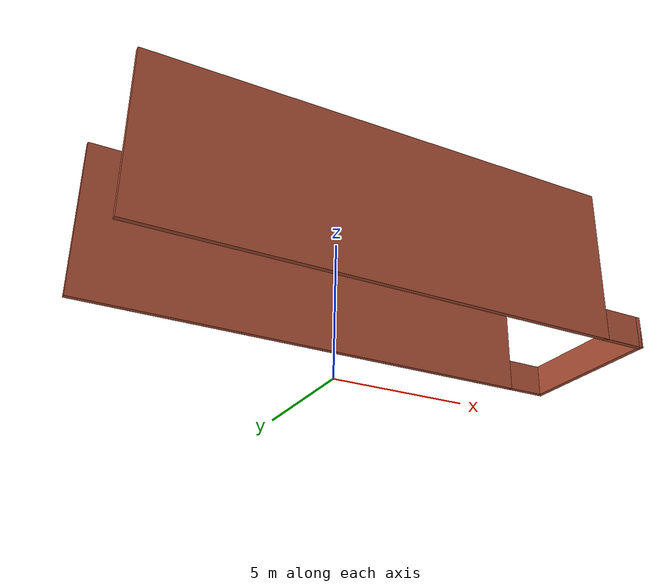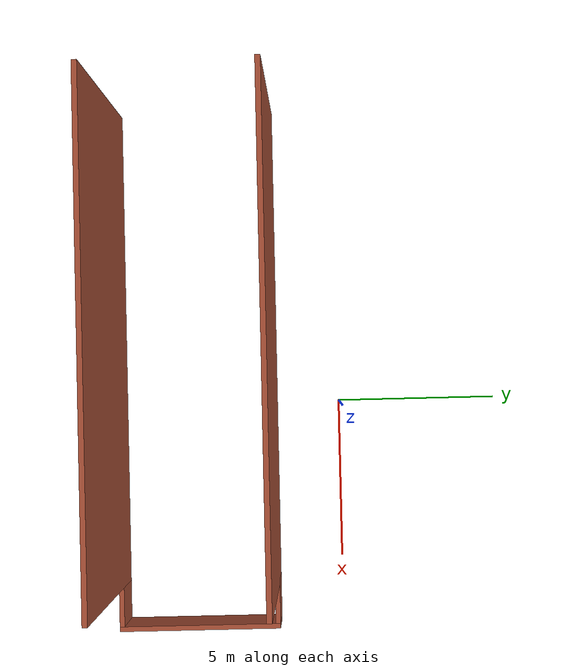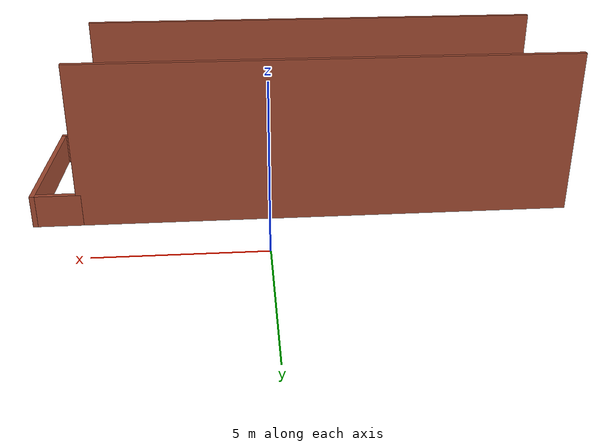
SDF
<?xml version='1.0'?>
<sdf version='1.6'>
  <model name='flipkart'>
    <pose frame=''>-1.144 -4.474 0 0 -0 0</pose>
    <link name='Wall_10'>
      <collision name='Wall_10_Collision'>
        <geometry>
          <box>
            <size>5 0.15 1</size>
          </box>
        </geometry>
        <pose frame=''>0 0 0.5 0 -0 0</pose>
      </collision>
      <visual name='Wall_10_Visual'>
        <pose frame=''>0 0 0.5 0 -0 0</pose>
        <geometry>
          <box>
            <size>5 0.15 1</size>
          </box>
        </geometry>
        <material>
          <script>
            <uri>file://media/materials/scripts/gazebo.material</uri>
            <name>Gazebo/Bricks</name>
          </script>
          <ambient>1 1 1 1</ambient>
        </material>
        <meta>
          <layer>0</layer>
        </meta>
      </visual>
      <pose frame=''>8.1 -0 0 0 -0 1.5708</pose>
    </link>
    <link name='Wall_16'>
      <collision name='Wall_16_Collision'>
        <geometry>
          <box>
            <size>1.5 0.15 1</size>
          </box>
        </geometry>
        <pose frame=''>0 0 0.5 0 -0 0</pose>
      </collision>
      <visual name='Wall_16_Visual'>
        <pose frame=''>0 0 0.5 0 -0 0</pose>
        <geometry>
          <box>
            <size>1.5 0.15 1</size>
          </box>
        </geometry>
        <material>
          <script>
            <uri>file://media/materials/scripts/gazebo.material</uri>
            <name>Gazebo/Bricks</name>
          </script>
          <ambient>1 1 1 1</ambient>
        </material>
        <meta>
          <layer>0</layer>
        </meta>
      </visual>
      <pose frame=''>7.425 2.425 0 0 -0 3.14159</pose>
    </link>
    <link name='Wall_17'>
      <collision name='Wall_17_Collision'>
        <geometry>
          <box>
            <size>15 0.15 5</size>
          </box>
        </geometry>
        <pose frame=''>0 0 2.5 0 -0 0</pose>
      </collision>
      <visual name='Wall_17_Visual'>
        <pose frame=''>0 0 2.5 0 -0 0</pose>
        <geometry>
          <box>
            <size>15 0.15 5</size>
          </box>
        </geometry>
        <material>
          <script>
            <uri>file://media/materials/scripts/gazebo.material</uri>
            <name>Gazebo/Bricks</name>
          </script>
          <ambient>1 1 1 1</ambient>
        </material>
        <meta>
          <layer>0</layer>
        </meta>
      </visual>
      <pose frame=''>-0.675 2.425 0 0 -0 3.14159</pose>
    </link>
    <link name='Wall_8'>
      <collision name='Wall_8_Collision'>
        <geometry>
          <box>
            <size>14.9736 0.15 5</size>
          </box>
        </geometry>
        <pose frame=''>0 0 2.5 0 -0 0</pose>
      </collision>
      <visual name='Wall_8_Visual'>
        <pose frame=''>0 0 2.5 0 -0 0</pose>
        <geometry>
          <box>
            <size>14.9736 0.15 5</size>
          </box>
        </geometry>
        <material>
          <script>
            <uri>file://media/materials/scripts/gazebo.material</uri>
            <name>Gazebo/Bricks</name>
          </script>
          <ambient>1 1 1 1</ambient>
        </material>
        <meta>
          <layer>0</layer>
        </meta>
      </visual>
      <pose frame=''>-0.6625 -2.425 0 0 -0 0</pose>
    </link>
    <link name='Wall_9'>
      <collision name='Wall_9_Collision'>
        <geometry>
          <box>
            <size>1.50011 0.15 1</size>
          </box>
        </geometry>
        <pose frame=''>0 0 0.5 0 -0 0</pose>
      </collision>
      <visual name='Wall_9_Visual'>
        <pose frame=''>0 0 0.5 0 -0 0</pose>
        <geometry>
          <box>
            <size>1.50011 0.15 1</size>
          </box>
        </geometry>
        <material>
          <script>
            <uri>file://media/materials/scripts/gazebo.material</uri>
            <name>Gazebo/Bricks</name>
          </script>
          <ambient>1 1 1 1</ambient>
        </material>
        <meta>
          <layer>0</layer>
        </meta>
      </visual>
      <pose frame=''>7.4245 -2.425 0 0 -0 0</pose>
    </link>
    <static>1</static>
  </model>
</sdf>
